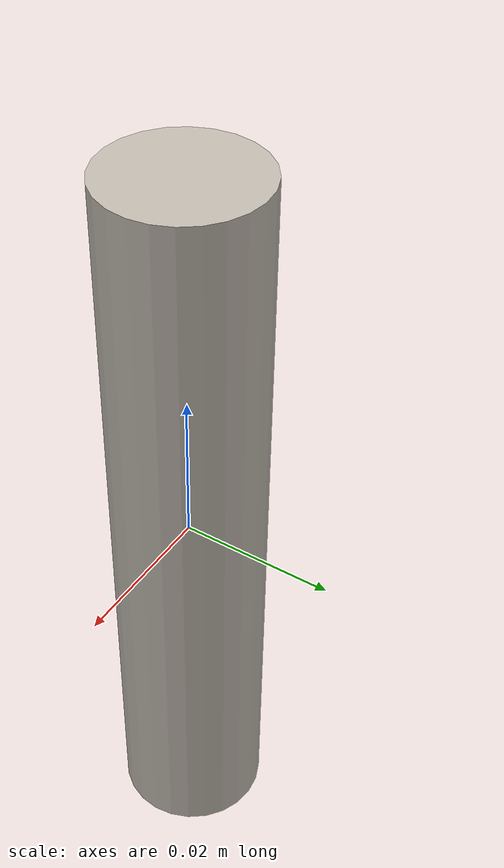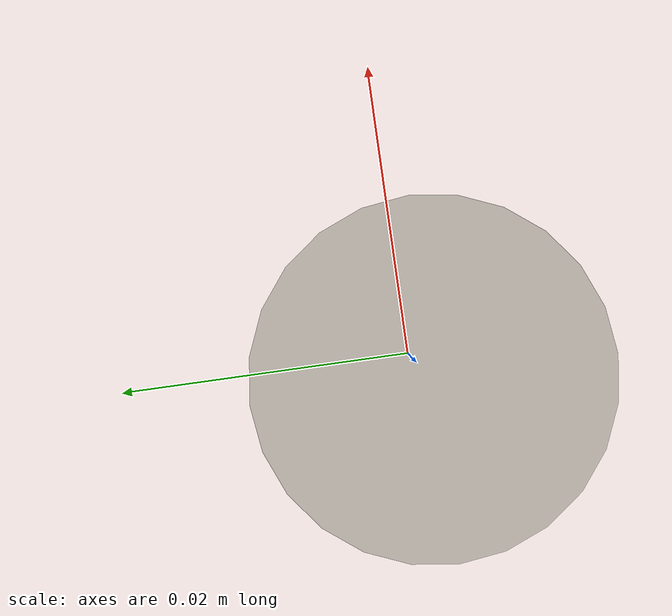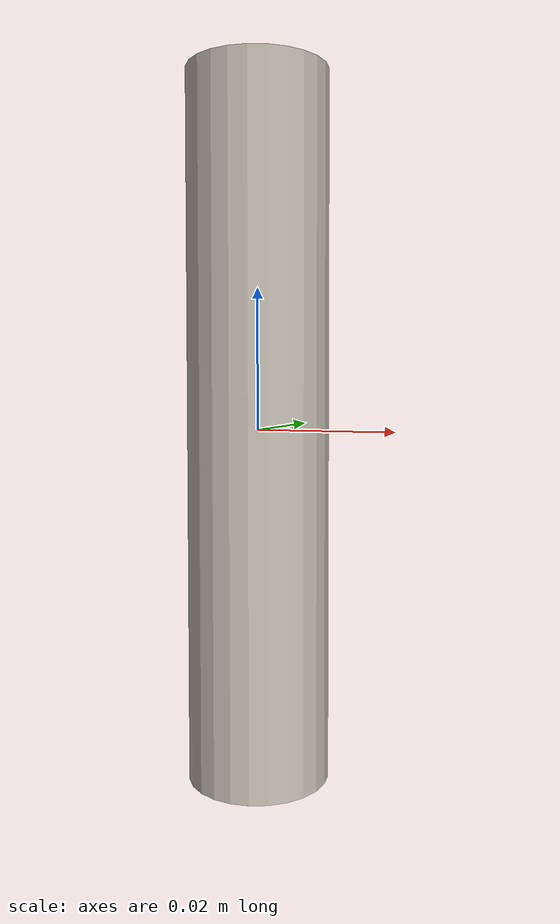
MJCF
<mujoco>
    <asset>
        <texture file="/home/paj7rng/amira_ML/simulation/assets/textures/steel-brushed.png" type="cube" name="steel-metal"/>
        <material name="smetal" reflectance="1.0" shininess="1.0" specular="1.0" texrepeat="1 1" texture="steel-metal" texuniform="true"/>
    </asset>
    <worldbody>
        <body>
            <body name="object" pos="0 0 0">
                <geom pos="0 0 0" size="0.01 0.05" type="cylinder" group="1" euler="0 0 0" priority="1" condim="6" friction="0.8 0.05 0.001" solimp="0.9 0.95 0.001 0.5 2" solref="0.02 1." material="smetal"/>
            </body>
        </body>
    </worldbody>
</mujoco>
